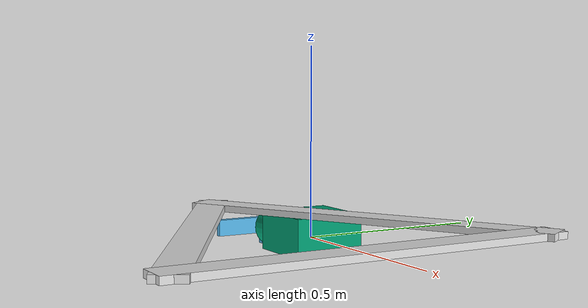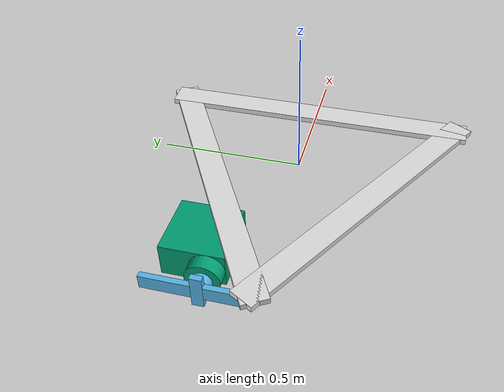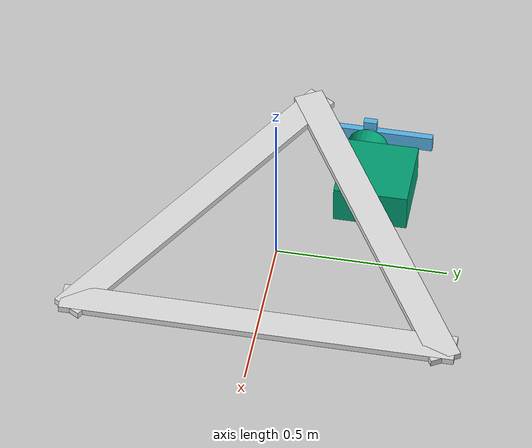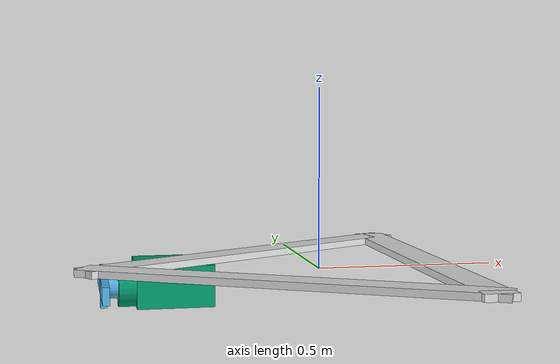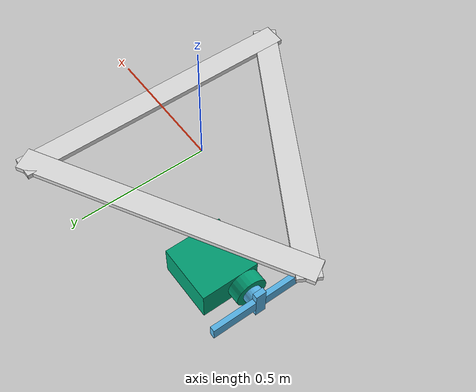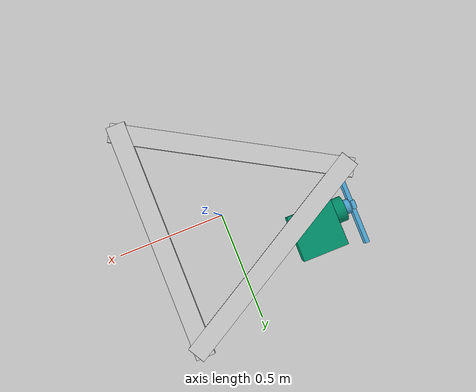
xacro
<?xml version="1.0"?>
<!-- +X is forward, +Y is left, +Z is up -->
<robot xmlns:xacro="http://www.ros.org/wiki/xacro" name="Prototype">

	<material name="white">
		<color rgba="0.875 0.875 0.875 1.0"/>
	</material>

	<xacro:property name="servoL" value="0.22"/>
	<xacro:property name="servoW" value="0.22"/>
	<xacro:property name="servoD" value="0.12"/>
	<xacro:property name="servoL2" value="0.05"/>
	<xacro:property name="hornD" value="0.05"/>
	<xacro:macro name="hxtservojoint" params="name parent child deg:=0 xyz:=${'0 0 0'} rpy:=${'0 0 0'}">
		<!-- unless adjusted, servo aims along +X, servo origin is at bottom corner next to horn, and larger width portion extends toward +Y -->
		<link name="${name}_servo">
			<visual>
				<geometry>
					<box size="${servoL} ${servoW} ${servoD}"/>
				</geometry>
				<origin xyz="${-servoL/2} ${servoW/2} ${servoD/2}"/>
			</visual>
			<visual>
				<geometry>
					<cylinder length="${servoL2}" radius="${servoD/2}"/>
				</geometry>
				<origin rpy="0 ${pi/2} 0" xyz="${servoL2 / 2} ${servoD/2} ${servoD/2}"/>
			</visual>
		</link>
		<joint name="${name}_servo" type="fixed">
			<parent link="${parent}"/>
			<child link="${name}_servo"/>
			<origin xyz="${xyz}" rpy="${rpy}"/>
		</joint>
		<joint name="${name}" type="revolute">
			<axis xyz="1 0 0"/>
			<limit effort="1024.0" lower="0.0" upper="${pi}" velocity="0.5"/>
			<origin xyz="${servoL2} ${servoD/2} ${servoD/2}" rpy="${-deg*pi/180} 0 0"/>
			<parent link="${name}_servo"/>
			<child link="${child}"/>
		</joint>
	</xacro:macro>
	<xacro:macro name="hxtservohorn">
		<!-- unless adjusted, servo horn aims along +X, and large portion of horn extends toward +Z -->
		<visual>
			<geometry>
				<cylinder length="0.03" radius="0.035"/>
			</geometry>
			<origin rpy="0 ${pi/2} 0" xyz="0.015 0 0"/>
		</visual>
		<visual>
			<geometry>
				<box size="0.02 0.12 0.04"/>
			</geometry>
			<origin xyz="0.04 0 0"/>
		</visual>
		<visual>
			<geometry>
				<box size="0.02 0.05 0.17"/>
			</geometry>
			<origin xyz="0.04 0 0.105"/>
		</visual>
		<visual>
			<geometry>
				<box size="0.02 0.05 0.15"/>
			</geometry>
			<origin xyz="0.04 0 -0.095"/>
		</visual>
	</xacro:macro>

	<xacro:property name="popsicleL" value="1.14"/>
	<xacro:property name="popsicleW" value="0.09"/>
	<xacro:property name="popsicleD" value="0.02"/>
	<link name="base_link">
		<xacro:macro name="bodypopsiclevisual" params="deg">
			<visual>
				<geometry>
					<box size="${popsicleW} ${popsicleL} ${popsicleD}"/>
				</geometry>
				<origin rpy="0 0 ${deg * pi / 180}" xyz="${-cos(deg*pi/180) * tan(30*pi/180) * (popsicleL - popsicleW)/-2} ${-sin(deg*pi/180) * tan(30*pi/180) * (popsicleL - popsicleW)/-2} ${popsicleD/2}"/>
				<material name="white"/>
			</visual>
		</xacro:macro>
		<xacro:bodypopsiclevisual deg="0"/>
		<xacro:bodypopsiclevisual deg="120"/>
		<xacro:bodypopsiclevisual deg="-120"/>
	</link>
	<link name="back_hip">
		<xacro:hxtservohorn/>
	</link>
	<xacro:hxtservojoint name="back_aiming_hip" parent="base_link" child="back_hip" deg="90" rpy="${pi} 0 ${pi}" xyz="${-popsicleL * sin(60 * pi / 180) / 2} ${servoD} 0"/>
</robot>
